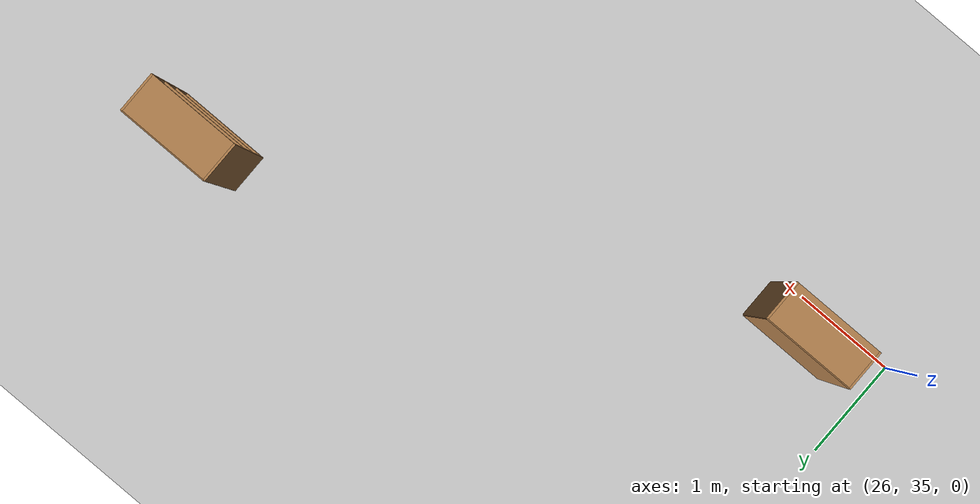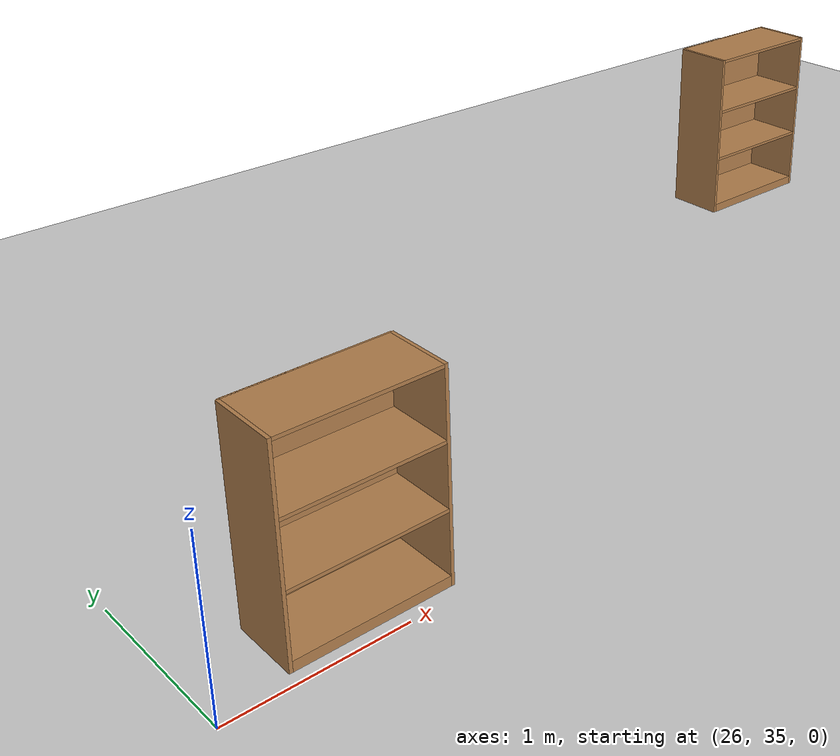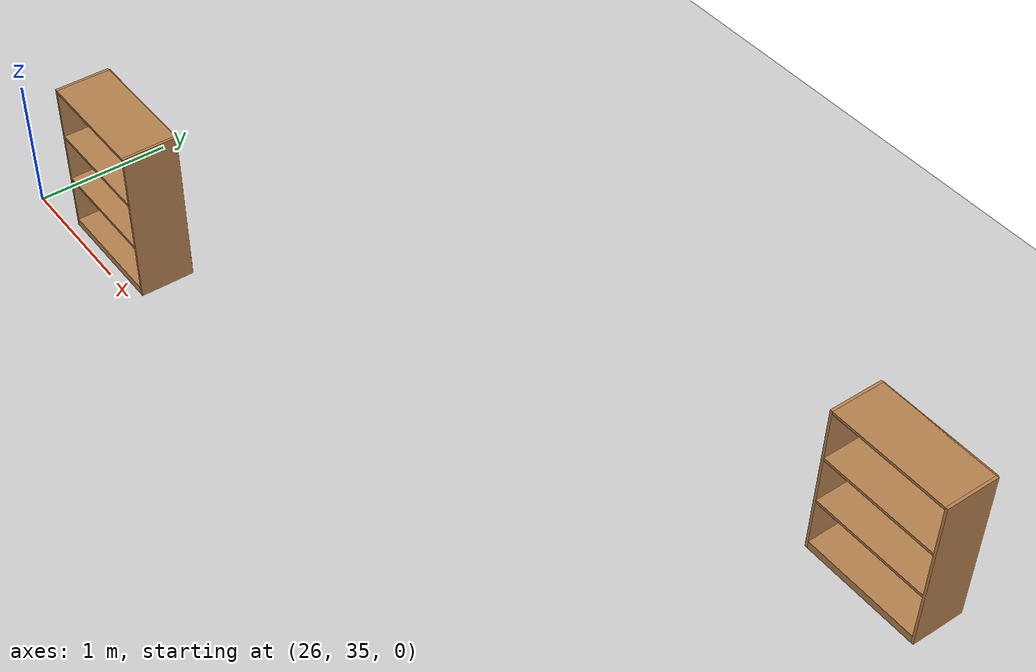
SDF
<sdf version="1.6">
 <world name="default">
  <model name="ground_plane">
   <static>1</static>
   <link name="link">
    <collision name="collision">
     <geometry><plane><normal>0 0 1</normal><size>100 100</size></plane></geometry>
     <surface><friction><ode><mu>100</mu><mu2>50</mu2></ode></friction></surface>
    </collision>
    <visual name="visual">
     <cast_shadows>0</cast_shadows>
     <geometry><plane><normal>0 0 1</normal><size>100 100</size></plane></geometry>
     <material>
      <script><uri>file://media/materials/scripts/gazebo.material</uri><name>Gazebo/Grey</name></script>
     </material>
    </visual>
   </link>
  </model>
  <model name="bookshelf_9">
   <static>1</static>
   <link name="link">
    <inertial><mass>1</mass></inertial>
    <collision name="back">
     <pose>0 0.005 0.6 0 -0 0</pose>
     <geometry><box><size>0.9 0.01 1.2</size></box></geometry>
    </collision>
    <visual name="visual1">
     <pose>0 0.005 0.6 0 -0 0</pose>
     <geometry><box><size>0.9 0.01 1.2</size></box></geometry>
     <material>
      <script><uri>file://media/materials/scripts/gazebo.material</uri><name>Gazebo/Wood</name></script>
     </material>
    </visual>
    <collision name="left_side">
     <pose>0.45 -0.195 0.6 0 -0 0</pose>
     <geometry><box><size>0.02 0.4 1.2</size></box></geometry>
    </collision>
    <visual name="visual2">
     <pose>0.45 -0.195 0.6 0 -0 0</pose>
     <geometry><box><size>0.02 0.4 1.2</size></box></geometry>
     <material>
      <script><uri>file://media/materials/scripts/gazebo.material</uri><name>Gazebo/Wood</name></script>
     </material>
    </visual>
    <collision name="right_side">
     <pose>-0.45 -0.195 0.6 0 -0 0</pose>
     <geometry><box><size>0.02 0.4 1.2</size></box></geometry>
    </collision>
    <visual name="visual3">
     <pose>-0.45 -0.195 0.6 0 -0 0</pose>
     <geometry><box><size>0.02 0.4 1.2</size></box></geometry>
     <material>
      <script><uri>file://media/materials/scripts/gazebo.material</uri><name>Gazebo/Wood</name></script>
     </material>
    </visual>
    <collision name="bottom">
     <pose>0 -0.195 0.03 0 -0 0</pose>
     <geometry><box><size>0.88 0.4 0.06</size></box></geometry>
    </collision>
    <visual name="visual4">
     <pose>0 -0.195 0.03 0 -0 0</pose>
     <geometry><box><size>0.88 0.4 0.06</size></box></geometry>
     <material>
      <script><uri>file://media/materials/scripts/gazebo.material</uri><name>Gazebo/Wood</name></script>
     </material>
    </visual>
    <collision name="top">
     <pose>0 -0.195 1.19 0 -0 0</pose>
     <geometry><box><size>0.88 0.4 0.02</size></box></geometry>
    </collision>
    <visual name="visual5">
     <pose>0 -0.195 1.19 0 -0 0</pose>
     <geometry><box><size>0.88 0.4 0.02</size></box></geometry>
     <material>
      <script><uri>file://media/materials/scripts/gazebo.material</uri><name>Gazebo/Wood</name></script>
     </material>
    </visual>
    <collision name="low_shelf">
     <pose>0 -0.195 0.43 0 -0 0</pose>
     <geometry><box><size>0.88 0.4 0.02</size></box></geometry>
    </collision>
    <visual name="visual6">
     <pose>0 -0.195 0.43 0 -0 0</pose>
     <geometry><box><size>0.88 0.4 0.02</size></box></geometry>
     <material>
      <script><uri>file://media/materials/scripts/gazebo.material</uri><name>Gazebo/Wood</name></script>
     </material>
    </visual>
    <collision name="high_shelf">
     <pose>0 -0.195 0.8 0 -0 0</pose>
     <geometry><box><size>0.88 0.4 0.02</size></box></geometry>
    </collision>
    <visual name="visual7">
     <pose>0 -0.195 0.8 0 -0 0</pose>
     <geometry><box><size>0.88 0.4 0.02</size></box></geometry>
     <material>
      <script><uri>file://media/materials/scripts/gazebo.material</uri><name>Gazebo/Wood</name></script>
     </material>
    </visual>
   </link>
   <pose>32.0753 37.6292 0 0 -0 0</pose>
  </model>
  <model name="bookshelf_10">
   <static>1</static>
   <link name="link">
    <inertial><mass>1</mass></inertial>
    <collision name="back">
     <pose>0 0.005 0.6 0 -0 0</pose>
     <geometry><box><size>0.9 0.01 1.2</size></box></geometry>
    </collision>
    <visual name="visual1">
     <pose>0 0.005 0.6 0 -0 0</pose>
     <geometry><box><size>0.9 0.01 1.2</size></box></geometry>
     <material>
      <script><uri>file://media/materials/scripts/gazebo.material</uri><name>Gazebo/Wood</name></script>
     </material>
    </visual>
    <collision name="left_side">
     <pose>0.45 -0.195 0.6 0 -0 0</pose>
     <geometry><box><size>0.02 0.4 1.2</size></box></geometry>
    </collision>
    <visual name="visual2">
     <pose>0.45 -0.195 0.6 0 -0 0</pose>
     <geometry><box><size>0.02 0.4 1.2</size></box></geometry>
     <material>
      <script><uri>file://media/materials/scripts/gazebo.material</uri><name>Gazebo/Wood</name></script>
     </material>
    </visual>
    <collision name="right_side">
     <pose>-0.45 -0.195 0.6 0 -0 0</pose>
     <geometry><box><size>0.02 0.4 1.2</size></box></geometry>
    </collision>
    <visual name="visual3">
     <pose>-0.45 -0.195 0.6 0 -0 0</pose>
     <geometry><box><size>0.02 0.4 1.2</size></box></geometry>
     <material>
      <script><uri>file://media/materials/scripts/gazebo.material</uri><name>Gazebo/Wood</name></script>
     </material>
    </visual>
    <collision name="bottom">
     <pose>0 -0.195 0.03 0 -0 0</pose>
     <geometry><box><size>0.88 0.4 0.06</size></box></geometry>
    </collision>
    <visual name="visual4">
     <pose>0 -0.195 0.03 0 -0 0</pose>
     <geometry><box><size>0.88 0.4 0.06</size></box></geometry>
     <material>
      <script><uri>file://media/materials/scripts/gazebo.material</uri><name>Gazebo/Wood</name></script>
     </material>
    </visual>
    <collision name="top">
     <pose>0 -0.195 1.19 0 -0 0</pose>
     <geometry><box><size>0.88 0.4 0.02</size></box></geometry>
    </collision>
    <visual name="visual5">
     <pose>0 -0.195 1.19 0 -0 0</pose>
     <geometry><box><size>0.88 0.4 0.02</size></box></geometry>
     <material>
      <script><uri>file://media/materials/scripts/gazebo.material</uri><name>Gazebo/Wood</name></script>
     </material>
    </visual>
    <collision name="low_shelf">
     <pose>0 -0.195 0.43 0 -0 0</pose>
     <geometry><box><size>0.88 0.4 0.02</size></box></geometry>
    </collision>
    <visual name="visual6">
     <pose>0 -0.195 0.43 0 -0 0</pose>
     <geometry><box><size>0.88 0.4 0.02</size></box></geometry>
     <material>
      <script><uri>file://media/materials/scripts/gazebo.material</uri><name>Gazebo/Wood</name></script>
     </material>
    </visual>
    <collision name="high_shelf">
     <pose>0 -0.195 0.8 0 -0 0</pose>
     <geometry><box><size>0.88 0.4 0.02</size></box></geometry>
    </collision>
    <visual name="visual7">
     <pose>0 -0.195 0.8 0 -0 0</pose>
     <geometry><box><size>0.88 0.4 0.02</size></box></geometry>
     <material>
      <script><uri>file://media/materials/scripts/gazebo.material</uri><name>Gazebo/Wood</name></script>
     </material>
    </visual>
   </link>
   <pose>26.8578 35.4705 0 0 -0 0</pose>
  </model>
 </world>
</sdf>
